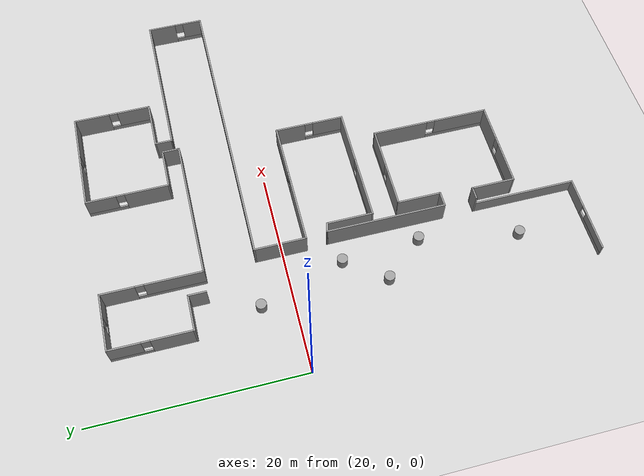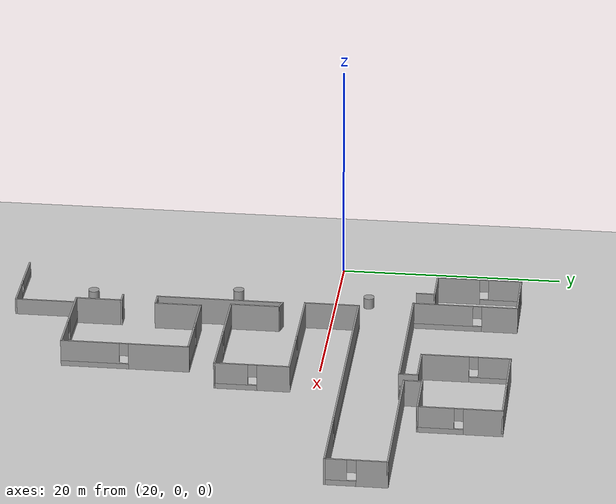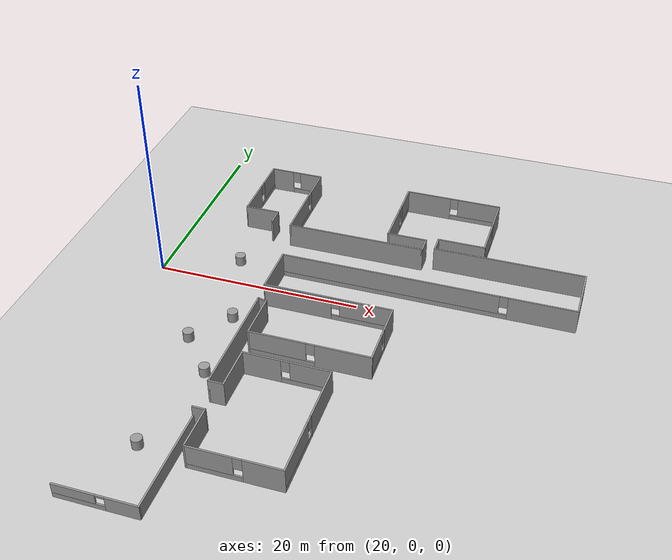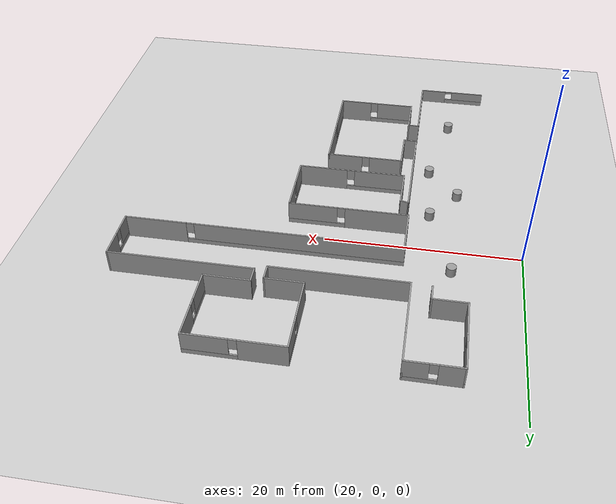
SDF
<sdf version="1.7">
 <world name="default">
  <model name="ground_plane">
   <static>1</static>
   <link name="link">
    <collision name="collision">
     <geometry><plane><normal>0 0 1</normal><size>100 100</size></plane></geometry>
     <surface><friction><ode><mu>100</mu><mu2>50</mu2></ode></friction></surface>
    </collision>
    <visual name="visual">
     <cast_shadows>0</cast_shadows>
     <geometry><plane><normal>0 0 1</normal><size>100 100</size></plane></geometry>
     <material>
      <script><uri>file://media/materials/scripts/gazebo.material</uri><name>Gazebo/Grey</name></script>
     </material>
    </visual>
   </link>
  </model>
  <model name="Hummanoid_Test_world">
   <pose>28.8571 1.76082 0 0 -0 0</pose>
   <link name="Wall_26">
    <collision name="Wall_26_Collision">
     <geometry><box><size>1.75 0.15 2.5</size></box></geometry>
     <pose>0 0 1.25 0 -0 0</pose>
    </collision>
    <visual name="Wall_26_Visual">
     <pose>0 0 1.25 0 -0 0</pose>
     <geometry><box><size>1.75 0.15 2.5</size></box></geometry>
     <material>
      <script><uri>file://media/materials/scripts/gazebo.material</uri><name>Gazebo/Grey</name></script>
      <ambient>1 1 1 1</ambient>
     </material>
     <meta><layer>0</layer></meta>
    </visual>
    <pose>-0.100001 6.615 0 0 -0 1.5708</pose>
   </link>
   <link name="Wall_27">
    <collision name="Wall_27_Collision">
     <geometry><box><size>3.5 0.15 2.5</size></box></geometry>
     <pose>0 0 1.25 0 -0 0</pose>
    </collision>
    <visual name="Wall_27_Visual">
     <pose>0 0 1.25 0 -0 0</pose>
     <geometry><box><size>3.5 0.15 2.5</size></box></geometry>
     <material>
      <script><uri>file://media/materials/scripts/gazebo.material</uri><name>Gazebo/Grey</name></script>
      <ambient>1 1 1 1</ambient>
     </material>
     <meta><layer>0</layer></meta>
    </visual>
    <pose>-1.775 7.415 0 0 -0 3.14159</pose>
   </link>
   <link name="Wall_28">
    <pose>-3.45 11.215 0 0 -0 1.5708</pose>
    <visual name="Wall_28_Visual_0">
     <pose>-1.91382 0 1.25 0 -0 0</pose>
     <geometry><box><size>3.92235 0.15 2.5</size></box></geometry>
     <material>
      <script><uri>file://media/materials/scripts/gazebo.material</uri><name>Gazebo/Grey</name></script>
      <ambient>1 1 1 1</ambient>
     </material>
     <meta><layer>0</layer></meta>
    </visual>
    <collision name="Wall_28_Collision_0">
     <geometry><box><size>3.92235 0.15 2.5</size></box></geometry>
     <pose>-1.91382 0 1.25 0 -0 0</pose>
    </collision>
    <visual name="Wall_28_Visual_1">
     <pose>1.96118 0 0.25 0 -0 0</pose>
     <geometry><box><size>3.82765 0.15 0.5</size></box></geometry>
     <material>
      <script><uri>file://media/materials/scripts/gazebo.material</uri><name>Gazebo/Grey</name></script>
      <ambient>1 1 1 1</ambient>
     </material>
     <meta><layer>0</layer></meta>
    </visual>
    <collision name="Wall_28_Collision_1">
     <geometry><box><size>3.82765 0.15 0.5</size></box></geometry>
     <pose>1.96118 0 0.25 0 -0 0</pose>
    </collision>
    <visual name="Wall_28_Visual_2">
     <pose>2.36118 0 1.5 0 -0 0</pose>
     <geometry><box><size>3.02765 0.15 2</size></box></geometry>
     <material>
      <script><uri>file://media/materials/scripts/gazebo.material</uri><name>Gazebo/Grey</name></script>
      <ambient>1 1 1 1</ambient>
     </material>
     <meta><layer>0</layer></meta>
    </visual>
    <collision name="Wall_28_Collision_2">
     <geometry><box><size>3.02765 0.15 2</size></box></geometry>
     <pose>2.36118 0 1.5 0 -0 0</pose>
    </collision>
    <visual name="Wall_28_Visual_3">
     <pose>0.447352 0 1.9 0 -0 0</pose>
     <geometry><box><size>0.8 0.15 1.2</size></box></geometry>
     <material>
      <script><uri>file://media/materials/scripts/gazebo.material</uri><name>Gazebo/Grey</name></script>
      <ambient>1 1 1 1</ambient>
     </material>
     <meta><layer>0</layer></meta>
    </visual>
    <collision name="Wall_28_Collision_3">
     <geometry><box><size>0.8 0.15 1.2</size></box></geometry>
     <pose>0.447352 0 1.9 0 -0 0</pose>
    </collision>
   </link>
   <link name="Wall_29">
    <pose>-0.775 15.015 0 0 -0 0</pose>
    <visual name="Wall_29_Visual_0">
     <pose>-1.5701 0 1.25 0 -0 0</pose>
     <geometry><box><size>2.35979 0.15 2.5</size></box></geometry>
     <material>
      <script><uri>file://media/materials/scripts/gazebo.material</uri><name>Gazebo/Grey</name></script>
      <ambient>1 1 1 1</ambient>
     </material>
     <meta><layer>0</layer></meta>
    </visual>
    <collision name="Wall_29_Collision_0">
     <geometry><box><size>2.35979 0.15 2.5</size></box></geometry>
     <pose>-1.5701 0 1.25 0 -0 0</pose>
    </collision>
    <visual name="Wall_29_Visual_1">
     <pose>1.1799 0 0.25 0 -0 0</pose>
     <geometry><box><size>3.14021 0.15 0.5</size></box></geometry>
     <material>
      <script><uri>file://media/materials/scripts/gazebo.material</uri><name>Gazebo/Grey</name></script>
      <ambient>1 1 1 1</ambient>
     </material>
     <meta><layer>0</layer></meta>
    </visual>
    <collision name="Wall_29_Collision_1">
     <geometry><box><size>3.14021 0.15 0.5</size></box></geometry>
     <pose>1.1799 0 0.25 0 -0 0</pose>
    </collision>
    <visual name="Wall_29_Visual_2">
     <pose>1.5799 0 1.5 0 -0 0</pose>
     <geometry><box><size>2.34021 0.15 2</size></box></geometry>
     <material>
      <script><uri>file://media/materials/scripts/gazebo.material</uri><name>Gazebo/Grey</name></script>
      <ambient>1 1 1 1</ambient>
     </material>
     <meta><layer>0</layer></meta>
    </visual>
    <collision name="Wall_29_Collision_2">
     <geometry><box><size>2.34021 0.15 2</size></box></geometry>
     <pose>1.5799 0 1.5 0 -0 0</pose>
    </collision>
    <visual name="Wall_29_Visual_3">
     <pose>0.009794 0 1.9 0 -0 0</pose>
     <geometry><box><size>0.8 0.15 1.2</size></box></geometry>
     <material>
      <script><uri>file://media/materials/scripts/gazebo.material</uri><name>Gazebo/Grey</name></script>
      <ambient>1 1 1 1</ambient>
     </material>
     <meta><layer>0</layer></meta>
    </visual>
    <collision name="Wall_29_Collision_3">
     <geometry><box><size>0.8 0.15 1.2</size></box></geometry>
     <pose>0.009794 0 1.9 0 -0 0</pose>
    </collision>
   </link>
   <link name="Wall_30">
    <pose>1.9 10.34 0 0 -0 -1.5708</pose>
    <visual name="Wall_30_Visual_0">
     <pose>-3.12917 0 1.25 0 -0 0</pose>
     <geometry><box><size>3.24166 0.15 2.5</size></box></geometry>
     <material>
      <script><uri>file://media/materials/scripts/gazebo.material</uri><name>Gazebo/Grey</name></script>
      <ambient>1 1 1 1</ambient>
     </material>
     <meta><layer>0</layer></meta>
    </visual>
    <collision name="Wall_30_Collision_0">
     <geometry><box><size>3.24166 0.15 2.5</size></box></geometry>
     <pose>-3.12917 0 1.25 0 -0 0</pose>
    </collision>
    <visual name="Wall_30_Visual_1">
     <pose>1.62083 0 0.25 0 -0 0</pose>
     <geometry><box><size>6.25834 0.15 0.5</size></box></geometry>
     <material>
      <script><uri>file://media/materials/scripts/gazebo.material</uri><name>Gazebo/Grey</name></script>
      <ambient>1 1 1 1</ambient>
     </material>
     <meta><layer>0</layer></meta>
    </visual>
    <collision name="Wall_30_Collision_1">
     <geometry><box><size>6.25834 0.15 0.5</size></box></geometry>
     <pose>1.62083 0 0.25 0 -0 0</pose>
    </collision>
    <visual name="Wall_30_Visual_2">
     <pose>2.02083 0 1.5 0 -0 0</pose>
     <geometry><box><size>5.45834 0.15 2</size></box></geometry>
     <material>
      <script><uri>file://media/materials/scripts/gazebo.material</uri><name>Gazebo/Grey</name></script>
      <ambient>1 1 1 1</ambient>
     </material>
     <meta><layer>0</layer></meta>
    </visual>
    <collision name="Wall_30_Collision_2">
     <geometry><box><size>5.45834 0.15 2</size></box></geometry>
     <pose>2.02083 0 1.5 0 -0 0</pose>
    </collision>
    <visual name="Wall_30_Visual_3">
     <pose>-1.10834 0 1.9 0 -0 0</pose>
     <geometry><box><size>0.8 0.15 1.2</size></box></geometry>
     <material>
      <script><uri>file://media/materials/scripts/gazebo.material</uri><name>Gazebo/Grey</name></script>
      <ambient>1 1 1 1</ambient>
     </material>
     <meta><layer>0</layer></meta>
    </visual>
    <collision name="Wall_30_Collision_3">
     <geometry><box><size>0.8 0.15 1.2</size></box></geometry>
     <pose>-1.10834 0 1.9 0 -0 0</pose>
    </collision>
   </link>
   <link name="Wall_31">
    <collision name="Wall_31_Collision">
     <geometry><box><size>13.75 0.15 2.5</size></box></geometry>
     <pose>0 0 1.25 0 -0 0</pose>
    </collision>
    <visual name="Wall_31_Visual">
     <pose>0 0 1.25 0 -0 0</pose>
     <geometry><box><size>13.75 0.15 2.5</size></box></geometry>
     <material>
      <script><uri>file://media/materials/scripts/gazebo.material</uri><name>Gazebo/Grey</name></script>
      <ambient>1 1 1 1</ambient>
     </material>
     <meta><layer>0</layer></meta>
    </visual>
    <pose>8.7 5.665 0 0 -0 0</pose>
   </link>
   <link name="Wall_32">
    <collision name="Wall_32_Collision">
     <geometry><box><size>1.75 0.15 2.5</size></box></geometry>
     <pose>0 0 1.25 0 -0 0</pose>
    </collision>
    <visual name="Wall_32_Visual">
     <pose>0 0 1.25 0 -0 0</pose>
     <geometry><box><size>1.75 0.15 2.5</size></box></geometry>
     <material>
      <script><uri>file://media/materials/scripts/gazebo.material</uri><name>Gazebo/Grey</name></script>
      <ambient>1 1 1 1</ambient>
     </material>
     <meta><layer>0</layer></meta>
    </visual>
    <pose>15.5 6.465 0 0 -0 1.5708</pose>
   </link>
   <link name="Wall_33">
    <collision name="Wall_33_Collision">
     <geometry><box><size>4 0.15 2.5</size></box></geometry>
     <pose>0 0 1.25 0 -0 0</pose>
    </collision>
    <visual name="Wall_33_Visual">
     <pose>0 0 1.25 0 -0 0</pose>
     <geometry><box><size>4 0.15 2.5</size></box></geometry>
     <material>
      <script><uri>file://media/materials/scripts/gazebo.material</uri><name>Gazebo/Grey</name></script>
      <ambient>1 1 1 1</ambient>
     </material>
     <meta><layer>0</layer></meta>
    </visual>
    <pose>13.575 7.265 0 0 -0 3.14159</pose>
   </link>
   <link name="Wall_34">
    <pose>11.65 11.19 0 0 -0 1.5708</pose>
    <visual name="Wall_34_Visual_0">
     <pose>-1.85682 0 1.25 0 -0 0</pose>
     <geometry><box><size>4.28636 0.15 2.5</size></box></geometry>
     <material>
      <script><uri>file://media/materials/scripts/gazebo.material</uri><name>Gazebo/Grey</name></script>
      <ambient>1 1 1 1</ambient>
     </material>
     <meta><layer>0</layer></meta>
    </visual>
    <collision name="Wall_34_Collision_0">
     <geometry><box><size>4.28636 0.15 2.5</size></box></geometry>
     <pose>-1.85682 0 1.25 0 -0 0</pose>
    </collision>
    <visual name="Wall_34_Visual_1">
     <pose>2.14318 0 0.25 0 -0 0</pose>
     <geometry><box><size>3.71364 0.15 0.5</size></box></geometry>
     <material>
      <script><uri>file://media/materials/scripts/gazebo.material</uri><name>Gazebo/Grey</name></script>
      <ambient>1 1 1 1</ambient>
     </material>
     <meta><layer>0</layer></meta>
    </visual>
    <collision name="Wall_34_Collision_1">
     <geometry><box><size>3.71364 0.15 0.5</size></box></geometry>
     <pose>2.14318 0 0.25 0 -0 0</pose>
    </collision>
    <visual name="Wall_34_Visual_2">
     <pose>2.54318 0 1.5 0 -0 0</pose>
     <geometry><box><size>2.91364 0.15 2</size></box></geometry>
     <material>
      <script><uri>file://media/materials/scripts/gazebo.material</uri><name>Gazebo/Grey</name></script>
      <ambient>1 1 1 1</ambient>
     </material>
     <meta><layer>0</layer></meta>
    </visual>
    <collision name="Wall_34_Collision_2">
     <geometry><box><size>2.91364 0.15 2</size></box></geometry>
     <pose>2.54318 0 1.5 0 -0 0</pose>
    </collision>
    <visual name="Wall_34_Visual_3">
     <pose>0.686362 0 1.9 0 -0 0</pose>
     <geometry><box><size>0.8 0.15 1.2</size></box></geometry>
     <material>
      <script><uri>file://media/materials/scripts/gazebo.material</uri><name>Gazebo/Grey</name></script>
      <ambient>1 1 1 1</ambient>
     </material>
     <meta><layer>0</layer></meta>
    </visual>
    <collision name="Wall_34_Collision_3">
     <geometry><box><size>0.8 0.15 1.2</size></box></geometry>
     <pose>0.686362 0 1.9 0 -0 0</pose>
    </collision>
   </link>
   <link name="Wall_35">
    <pose>16.45 15.115 0 0 -0 0</pose>
    <visual name="Wall_35_Visual_0">
     <pose>-2.5777 0 1.25 0 -0 0</pose>
     <geometry><box><size>4.59461 0.15 2.5</size></box></geometry>
     <material>
      <script><uri>file://media/materials/scripts/gazebo.material</uri><name>Gazebo/Grey</name></script>
      <ambient>1 1 1 1</ambient>
     </material>
     <meta><layer>0</layer></meta>
    </visual>
    <collision name="Wall_35_Collision_0">
     <geometry><box><size>4.59461 0.15 2.5</size></box></geometry>
     <pose>-2.5777 0 1.25 0 -0 0</pose>
    </collision>
    <visual name="Wall_35_Visual_1">
     <pose>2.2973 0 0.25 0 -0 0</pose>
     <geometry><box><size>5.15539 0.15 0.5</size></box></geometry>
     <material>
      <script><uri>file://media/materials/scripts/gazebo.material</uri><name>Gazebo/Grey</name></script>
      <ambient>1 1 1 1</ambient>
     </material>
     <meta><layer>0</layer></meta>
    </visual>
    <collision name="Wall_35_Collision_1">
     <geometry><box><size>5.15539 0.15 0.5</size></box></geometry>
     <pose>2.2973 0 0.25 0 -0 0</pose>
    </collision>
    <visual name="Wall_35_Visual_2">
     <pose>2.6973 0 1.5 0 -0 0</pose>
     <geometry><box><size>4.35539 0.15 2</size></box></geometry>
     <material>
      <script><uri>file://media/materials/scripts/gazebo.material</uri><name>Gazebo/Grey</name></script>
      <ambient>1 1 1 1</ambient>
     </material>
     <meta><layer>0</layer></meta>
    </visual>
    <collision name="Wall_35_Collision_2">
     <geometry><box><size>4.35539 0.15 2</size></box></geometry>
     <pose>2.6973 0 1.5 0 -0 0</pose>
    </collision>
    <visual name="Wall_35_Visual_3">
     <pose>0.119606 0 1.9 0 -0 0</pose>
     <geometry><box><size>0.8 0.15 1.2</size></box></geometry>
     <material>
      <script><uri>file://media/materials/scripts/gazebo.material</uri><name>Gazebo/Grey</name></script>
      <ambient>1 1 1 1</ambient>
     </material>
     <meta><layer>0</layer></meta>
    </visual>
    <collision name="Wall_35_Collision_3">
     <geometry><box><size>0.8 0.15 1.2</size></box></geometry>
     <pose>0.119606 0 1.9 0 -0 0</pose>
    </collision>
   </link>
   <link name="Wall_36">
    <pose>21.25 11.44 0 0 -0 -1.5708</pose>
    <visual name="Wall_36_Visual_0">
     <pose>-2.02567 0 1.25 0 -0 0</pose>
     <geometry><box><size>3.44866 0.15 2.5</size></box></geometry>
     <material>
      <script><uri>file://media/materials/scripts/gazebo.material</uri><name>Gazebo/Grey</name></script>
      <ambient>1 1 1 1</ambient>
     </material>
     <meta><layer>0</layer></meta>
    </visual>
    <collision name="Wall_36_Collision_0">
     <geometry><box><size>3.44866 0.15 2.5</size></box></geometry>
     <pose>-2.02567 0 1.25 0 -0 0</pose>
    </collision>
    <visual name="Wall_36_Visual_1">
     <pose>1.72433 0 0.25 0 -0 0</pose>
     <geometry><box><size>4.05134 0.15 0.5</size></box></geometry>
     <material>
      <script><uri>file://media/materials/scripts/gazebo.material</uri><name>Gazebo/Grey</name></script>
      <ambient>1 1 1 1</ambient>
     </material>
     <meta><layer>0</layer></meta>
    </visual>
    <collision name="Wall_36_Collision_1">
     <geometry><box><size>4.05134 0.15 0.5</size></box></geometry>
     <pose>1.72433 0 0.25 0 -0 0</pose>
    </collision>
    <visual name="Wall_36_Visual_2">
     <pose>2.12433 0 1.5 0 -0 0</pose>
     <geometry><box><size>3.25134 0.15 2</size></box></geometry>
     <material>
      <script><uri>file://media/materials/scripts/gazebo.material</uri><name>Gazebo/Grey</name></script>
      <ambient>1 1 1 1</ambient>
     </material>
     <meta><layer>0</layer></meta>
    </visual>
    <collision name="Wall_36_Collision_2">
     <geometry><box><size>3.25134 0.15 2</size></box></geometry>
     <pose>2.12433 0 1.5 0 -0 0</pose>
    </collision>
    <visual name="Wall_36_Visual_3">
     <pose>0.098663 0 1.9 0 -0 0</pose>
     <geometry><box><size>0.8 0.15 1.2</size></box></geometry>
     <material>
      <script><uri>file://media/materials/scripts/gazebo.material</uri><name>Gazebo/Grey</name></script>
      <ambient>1 1 1 1</ambient>
     </material>
     <meta><layer>0</layer></meta>
    </visual>
    <collision name="Wall_36_Collision_3">
     <geometry><box><size>0.8 0.15 1.2</size></box></geometry>
     <pose>0.098663 0 1.9 0 -0 0</pose>
    </collision>
   </link>
   <link name="Wall_37">
    <collision name="Wall_37_Collision">
     <geometry><box><size>4.75 0.15 2.5</size></box></geometry>
     <pose>0 0 1.25 0 -0 0</pose>
    </collision>
    <visual name="Wall_37_Visual">
     <pose>0 0 1.25 0 -0 0</pose>
     <geometry><box><size>4.75 0.15 2.5</size></box></geometry>
     <material>
      <script><uri>file://media/materials/scripts/gazebo.material</uri><name>Gazebo/Grey</name></script>
      <ambient>1 1 1 1</ambient>
     </material>
     <meta><layer>0</layer></meta>
    </visual>
    <pose>18.95 7.765 0 0 -0 3.14159</pose>
   </link>
   <link name="Wall_38">
    <collision name="Wall_38_Collision">
     <geometry><box><size>1.75 0.15 2.5</size></box></geometry>
     <pose>0 0 1.25 0 -0 0</pose>
    </collision>
    <visual name="Wall_38_Visual">
     <pose>0 0 1.25 0 -0 0</pose>
     <geometry><box><size>1.75 0.15 2.5</size></box></geometry>
     <material>
      <script><uri>file://media/materials/scripts/gazebo.material</uri><name>Gazebo/Grey</name></script>
      <ambient>1 1 1 1</ambient>
     </material>
     <meta><layer>0</layer></meta>
    </visual>
    <pose>16.65 6.965 0 0 -0 -1.5708</pose>
   </link>
   <link name="Wall_39">
    <collision name="Wall_39_Collision">
     <geometry><box><size>14.75 0.15 2.5</size></box></geometry>
     <pose>0 0 1.25 0 -0 0</pose>
    </collision>
    <visual name="Wall_39_Visual">
     <pose>0 0 1.25 0 -0 0</pose>
     <geometry><box><size>14.75 0.15 2.5</size></box></geometry>
     <material>
      <script><uri>file://media/materials/scripts/gazebo.material</uri><name>Gazebo/Grey</name></script>
      <ambient>1 1 1 1</ambient>
     </material>
     <meta><layer>0</layer></meta>
    </visual>
    <pose>23.95 6.165 0 0 -0 0</pose>
   </link>
   <link name="Wall_40">
    <pose>31.25 3.49 0 0 -0 -1.5708</pose>
    <visual name="Wall_40_Visual_0">
     <pose>-1.38098 0 1.25 0 -0 0</pose>
     <geometry><box><size>2.73805 0.15 2.5</size></box></geometry>
     <material>
      <script><uri>file://media/materials/scripts/gazebo.material</uri><name>Gazebo/Grey</name></script>
      <ambient>1 1 1 1</ambient>
     </material>
     <meta><layer>0</layer></meta>
    </visual>
    <collision name="Wall_40_Collision_0">
     <geometry><box><size>2.73805 0.15 2.5</size></box></geometry>
     <pose>-1.38098 0 1.25 0 -0 0</pose>
    </collision>
    <visual name="Wall_40_Visual_1">
     <pose>1.36902 0 0.25 0 -0 0</pose>
     <geometry><box><size>2.76195 0.15 0.5</size></box></geometry>
     <material>
      <script><uri>file://media/materials/scripts/gazebo.material</uri><name>Gazebo/Grey</name></script>
      <ambient>1 1 1 1</ambient>
     </material>
     <meta><layer>0</layer></meta>
    </visual>
    <collision name="Wall_40_Collision_1">
     <geometry><box><size>2.76195 0.15 0.5</size></box></geometry>
     <pose>1.36902 0 0.25 0 -0 0</pose>
    </collision>
    <visual name="Wall_40_Visual_2">
     <pose>1.76902 0 1.5 0 -0 0</pose>
     <geometry><box><size>1.96195 0.15 2</size></box></geometry>
     <material>
      <script><uri>file://media/materials/scripts/gazebo.material</uri><name>Gazebo/Grey</name></script>
      <ambient>1 1 1 1</ambient>
     </material>
     <meta><layer>0</layer></meta>
    </visual>
    <collision name="Wall_40_Collision_2">
     <geometry><box><size>1.96195 0.15 2</size></box></geometry>
     <pose>1.76902 0 1.5 0 -0 0</pose>
    </collision>
    <visual name="Wall_40_Visual_3">
     <pose>0.388048 0 1.9 0 -0 0</pose>
     <geometry><box><size>0.8 0.15 1.2</size></box></geometry>
     <material>
      <script><uri>file://media/materials/scripts/gazebo.material</uri><name>Gazebo/Grey</name></script>
      <ambient>1 1 1 1</ambient>
     </material>
     <meta><layer>0</layer></meta>
    </visual>
    <collision name="Wall_40_Collision_3">
     <geometry><box><size>0.8 0.15 1.2</size></box></geometry>
     <pose>0.388048 0 1.9 0 -0 0</pose>
    </collision>
   </link>
   <link name="Wall_41">
    <pose>17.075 0.815001 0 0 -0 3.14159</pose>
    <visual name="Wall_41_Visual_0">
     <pose>-11.0315 0 1.25 0 -0 0</pose>
     <geometry><box><size>6.43703 0.15 2.5</size></box></geometry>
     <material>
      <script><uri>file://media/materials/scripts/gazebo.material</uri><name>Gazebo/Grey</name></script>
      <ambient>1 1 1 1</ambient>
     </material>
     <meta><layer>0</layer></meta>
    </visual>
    <collision name="Wall_41_Collision_0">
     <geometry><box><size>6.43703 0.15 2.5</size></box></geometry>
     <pose>-11.0315 0 1.25 0 -0 0</pose>
    </collision>
    <visual name="Wall_41_Visual_1">
     <pose>3.21851 0 0.25 0 -0 0</pose>
     <geometry><box><size>22.063 0.15 0.5</size></box></geometry>
     <material>
      <script><uri>file://media/materials/scripts/gazebo.material</uri><name>Gazebo/Grey</name></script>
      <ambient>1 1 1 1</ambient>
     </material>
     <meta><layer>0</layer></meta>
    </visual>
    <collision name="Wall_41_Collision_1">
     <geometry><box><size>22.063 0.15 0.5</size></box></geometry>
     <pose>3.21851 0 0.25 0 -0 0</pose>
    </collision>
    <visual name="Wall_41_Visual_2">
     <pose>3.61851 0 1.5 0 -0 0</pose>
     <geometry><box><size>21.263 0.15 2</size></box></geometry>
     <material>
      <script><uri>file://media/materials/scripts/gazebo.material</uri><name>Gazebo/Grey</name></script>
      <ambient>1 1 1 1</ambient>
     </material>
     <meta><layer>0</layer></meta>
    </visual>
    <collision name="Wall_41_Collision_2">
     <geometry><box><size>21.263 0.15 2</size></box></geometry>
     <pose>3.61851 0 1.5 0 -0 0</pose>
    </collision>
    <visual name="Wall_41_Visual_3">
     <pose>-7.41298 0 1.9 0 -0 0</pose>
     <geometry><box><size>0.8 0.15 1.2</size></box></geometry>
     <material>
      <script><uri>file://media/materials/scripts/gazebo.material</uri><name>Gazebo/Grey</name></script>
      <ambient>1 1 1 1</ambient>
     </material>
     <meta><layer>0</layer></meta>
    </visual>
    <collision name="Wall_41_Collision_3">
     <geometry><box><size>0.8 0.15 1.2</size></box></geometry>
     <pose>-7.41298 0 1.9 0 -0 0</pose>
    </collision>
   </link>
   <link name="Wall_42">
    <collision name="Wall_42_Collision">
     <geometry><box><size>5 0.15 2.5</size></box></geometry>
     <pose>0 0 1.25 0 -0 0</pose>
    </collision>
    <visual name="Wall_42_Visual">
     <pose>0 0 1.25 0 -0 0</pose>
     <geometry><box><size>5 0.15 2.5</size></box></geometry>
     <material>
      <script><uri>file://media/materials/scripts/gazebo.material</uri><name>Gazebo/Grey</name></script>
      <ambient>1 1 1 1</ambient>
     </material>
     <meta><layer>0</layer></meta>
    </visual>
    <pose>2.9 -1.61 0 0 -0 -1.5708</pose>
   </link>
   <link name="Wall_43">
    <pose>9.075 -4.035 0 0 -0 0</pose>
    <visual name="Wall_43_Visual_0">
     <pose>-2.95559 0 1.25 0 -0 0</pose>
     <geometry><box><size>6.58883 0.15 2.5</size></box></geometry>
     <material>
      <script><uri>file://media/materials/scripts/gazebo.material</uri><name>Gazebo/Grey</name></script>
      <ambient>1 1 1 1</ambient>
     </material>
     <meta><layer>0</layer></meta>
    </visual>
    <collision name="Wall_43_Collision_0">
     <geometry><box><size>6.58883 0.15 2.5</size></box></geometry>
     <pose>-2.95559 0 1.25 0 -0 0</pose>
    </collision>
    <visual name="Wall_43_Visual_1">
     <pose>3.29441 0 0.25 0 -0 0</pose>
     <geometry><box><size>5.91117 0.15 0.5</size></box></geometry>
     <material>
      <script><uri>file://media/materials/scripts/gazebo.material</uri><name>Gazebo/Grey</name></script>
      <ambient>1 1 1 1</ambient>
     </material>
     <meta><layer>0</layer></meta>
    </visual>
    <collision name="Wall_43_Collision_1">
     <geometry><box><size>5.91117 0.15 0.5</size></box></geometry>
     <pose>3.29441 0 0.25 0 -0 0</pose>
    </collision>
    <visual name="Wall_43_Visual_2">
     <pose>3.69441 0 1.5 0 -0 0</pose>
     <geometry><box><size>5.11117 0.15 2</size></box></geometry>
     <material>
      <script><uri>file://media/materials/scripts/gazebo.material</uri><name>Gazebo/Grey</name></script>
      <ambient>1 1 1 1</ambient>
     </material>
     <meta><layer>0</layer></meta>
    </visual>
    <collision name="Wall_43_Collision_2">
     <geometry><box><size>5.11117 0.15 2</size></box></geometry>
     <pose>3.69441 0 1.5 0 -0 0</pose>
    </collision>
    <visual name="Wall_43_Visual_3">
     <pose>0.738827 0 1.9 0 -0 0</pose>
     <geometry><box><size>0.8 0.15 1.2</size></box></geometry>
     <material>
      <script><uri>file://media/materials/scripts/gazebo.material</uri><name>Gazebo/Grey</name></script>
      <ambient>1 1 1 1</ambient>
     </material>
     <meta><layer>0</layer></meta>
    </visual>
    <collision name="Wall_43_Collision_3">
     <geometry><box><size>0.8 0.15 1.2</size></box></geometry>
     <pose>0.738827 0 1.9 0 -0 0</pose>
    </collision>
   </link>
   <link name="Wall_44">
    <pose>15.25 -7.335 0 0 -0 -1.5708</pose>
    <visual name="Wall_44_Visual_0">
     <pose>-1.91623 0 1.25 0 -0 0</pose>
     <geometry><box><size>2.91753 0.15 2.5</size></box></geometry>
     <material>
      <script><uri>file://media/materials/scripts/gazebo.material</uri><name>Gazebo/Grey</name></script>
      <ambient>1 1 1 1</ambient>
     </material>
     <meta><layer>0</layer></meta>
    </visual>
    <collision name="Wall_44_Collision_0">
     <geometry><box><size>2.91753 0.15 2.5</size></box></geometry>
     <pose>-1.91623 0 1.25 0 -0 0</pose>
    </collision>
    <visual name="Wall_44_Visual_1">
     <pose>1.45877 0 0.25 0 -0 0</pose>
     <geometry><box><size>3.83247 0.15 0.5</size></box></geometry>
     <material>
      <script><uri>file://media/materials/scripts/gazebo.material</uri><name>Gazebo/Grey</name></script>
      <ambient>1 1 1 1</ambient>
     </material>
     <meta><layer>0</layer></meta>
    </visual>
    <collision name="Wall_44_Collision_1">
     <geometry><box><size>3.83247 0.15 0.5</size></box></geometry>
     <pose>1.45877 0 0.25 0 -0 0</pose>
    </collision>
    <visual name="Wall_44_Visual_2">
     <pose>1.85877 0 1.5 0 -0 0</pose>
     <geometry><box><size>3.03247 0.15 2</size></box></geometry>
     <material>
      <script><uri>file://media/materials/scripts/gazebo.material</uri><name>Gazebo/Grey</name></script>
      <ambient>1 1 1 1</ambient>
     </material>
     <meta><layer>0</layer></meta>
    </visual>
    <collision name="Wall_44_Collision_2">
     <geometry><box><size>3.03247 0.15 2</size></box></geometry>
     <pose>1.85877 0 1.5 0 -0 0</pose>
    </collision>
    <visual name="Wall_44_Visual_3">
     <pose>-0.057467 0 1.9 0 -0 0</pose>
     <geometry><box><size>0.8 0.15 1.2</size></box></geometry>
     <material>
      <script><uri>file://media/materials/scripts/gazebo.material</uri><name>Gazebo/Grey</name></script>
      <ambient>1 1 1 1</ambient>
     </material>
     <meta><layer>0</layer></meta>
    </visual>
    <collision name="Wall_44_Collision_3">
     <geometry><box><size>0.8 0.15 1.2</size></box></geometry>
     <pose>-0.057467 0 1.9 0 -0 0</pose>
    </collision>
   </link>
   <link name="Wall_45">
    <pose>9.575 -10.635 0 0 -0 3.14159</pose>
    <visual name="Wall_45_Visual_0">
     <pose>-3.12485 0 1.25 0 -0 0</pose>
     <geometry><box><size>5.2503 0.15 2.5</size></box></geometry>
     <material>
      <script><uri>file://media/materials/scripts/gazebo.material</uri><name>Gazebo/Grey</name></script>
      <ambient>1 1 1 1</ambient>
     </material>
     <meta><layer>0</layer></meta>
    </visual>
    <collision name="Wall_45_Collision_0">
     <geometry><box><size>5.2503 0.15 2.5</size></box></geometry>
     <pose>-3.12485 0 1.25 0 -0 0</pose>
    </collision>
    <visual name="Wall_45_Visual_1">
     <pose>2.62515 0 0.25 0 -0 0</pose>
     <geometry><box><size>6.2497 0.15 0.5</size></box></geometry>
     <material>
      <script><uri>file://media/materials/scripts/gazebo.material</uri><name>Gazebo/Grey</name></script>
      <ambient>1 1 1 1</ambient>
     </material>
     <meta><layer>0</layer></meta>
    </visual>
    <collision name="Wall_45_Collision_1">
     <geometry><box><size>6.2497 0.15 0.5</size></box></geometry>
     <pose>2.62515 0 0.25 0 -0 0</pose>
    </collision>
    <visual name="Wall_45_Visual_2">
     <pose>3.02515 0 1.5 0 -0 0</pose>
     <geometry><box><size>5.4497 0.15 2</size></box></geometry>
     <material>
      <script><uri>file://media/materials/scripts/gazebo.material</uri><name>Gazebo/Grey</name></script>
      <ambient>1 1 1 1</ambient>
     </material>
     <meta><layer>0</layer></meta>
    </visual>
    <collision name="Wall_45_Collision_2">
     <geometry><box><size>5.4497 0.15 2</size></box></geometry>
     <pose>3.02515 0 1.5 0 -0 0</pose>
    </collision>
    <visual name="Wall_45_Visual_3">
     <pose>-0.099697 0 1.9 0 -0 0</pose>
     <geometry><box><size>0.8 0.15 1.2</size></box></geometry>
     <material>
      <script><uri>file://media/materials/scripts/gazebo.material</uri><name>Gazebo/Grey</name></script>
      <ambient>1 1 1 1</ambient>
     </material>
     <meta><layer>0</layer></meta>
    </visual>
    <collision name="Wall_45_Collision_3">
     <geometry><box><size>0.8 0.15 1.2</size></box></geometry>
     <pose>-0.099697 0 1.9 0 -0 0</pose>
    </collision>
   </link>
   <link name="Wall_46">
    <collision name="Wall_46_Collision">
     <geometry><box><size>4.5 0.15 2.5</size></box></geometry>
     <pose>0 0 1.25 0 -0 0</pose>
    </collision>
    <visual name="Wall_46_Visual">
     <pose>0 0 1.25 0 -0 0</pose>
     <geometry><box><size>4.5 0.15 2.5</size></box></geometry>
     <material>
      <script><uri>file://media/materials/scripts/gazebo.material</uri><name>Gazebo/Grey</name></script>
      <ambient>1 1 1 1</ambient>
     </material>
     <meta><layer>0</layer></meta>
    </visual>
    <pose>3.9 -8.46 0 0 -0 1.5708</pose>
   </link>
   <link name="Wall_47">
    <collision name="Wall_47_Collision">
     <geometry><box><size>1 0.15 2.5</size></box></geometry>
     <pose>0 0 1.25 0 -0 0</pose>
    </collision>
    <visual name="Wall_47_Visual">
     <pose>0 0 1.25 0 -0 0</pose>
     <geometry><box><size>1 0.15 2.5</size></box></geometry>
     <material>
      <script><uri>file://media/materials/scripts/gazebo.material</uri><name>Gazebo/Grey</name></script>
      <ambient>1 1 1 1</ambient>
     </material>
     <meta><layer>0</layer></meta>
    </visual>
    <pose>3.48948 -6.175 0 0 -0 2.87979</pose>
   </link>
   <link name="Wall_48">
    <collision name="Wall_48_Collision">
     <geometry><box><size>11.5 0.15 2.5</size></box></geometry>
     <pose>0 0 1.25 0 -0 0</pose>
    </collision>
    <visual name="Wall_48_Visual">
     <pose>0 0 1.25 0 -0 0</pose>
     <geometry><box><size>11.5 0.15 2.5</size></box></geometry>
     <material>
      <script><uri>file://media/materials/scripts/gazebo.material</uri><name>Gazebo/Grey</name></script>
      <ambient>1 1 1 1</ambient>
     </material>
     <meta><layer>0</layer></meta>
    </visual>
    <pose>3.07896 -11.74 0 0 -0 -1.5708</pose>
   </link>
   <link name="Wall_49">
    <collision name="Wall_49_Collision">
     <geometry><box><size>1.5 0.15 2.5</size></box></geometry>
     <pose>0 0 1.25 0 -0 0</pose>
    </collision>
    <visual name="Wall_49_Visual">
     <pose>0 0 1.25 0 -0 0</pose>
     <geometry><box><size>1.5 0.15 2.5</size></box></geometry>
     <material>
      <script><uri>file://media/materials/scripts/gazebo.material</uri><name>Gazebo/Grey</name></script>
      <ambient>1 1 1 1</ambient>
     </material>
     <meta><layer>0</layer></meta>
    </visual>
    <pose>3.75396 -17.415 0 0 -0 0</pose>
   </link>
   <link name="Wall_50">
    <collision name="Wall_50_Collision">
     <geometry><box><size>4.25 0.15 2.5</size></box></geometry>
     <pose>0 0 1.25 0 -0 0</pose>
    </collision>
    <visual name="Wall_50_Visual">
     <pose>0 0 1.25 0 -0 0</pose>
     <geometry><box><size>4.25 0.15 2.5</size></box></geometry>
     <material>
      <script><uri>file://media/materials/scripts/gazebo.material</uri><name>Gazebo/Grey</name></script>
      <ambient>1 1 1 1</ambient>
     </material>
     <meta><layer>0</layer></meta>
    </visual>
    <pose>4.42896 -15.365 0 0 -0 1.5708</pose>
   </link>
   <link name="Wall_51">
    <pose>8.47896 -13.315 0 0 -0 0</pose>
    <visual name="Wall_51_Visual_0">
     <pose>-2.31597 0 1.25 0 -0 0</pose>
     <geometry><box><size>3.61807 0.15 2.5</size></box></geometry>
     <material>
      <script><uri>file://media/materials/scripts/gazebo.material</uri><name>Gazebo/Grey</name></script>
      <ambient>1 1 1 1</ambient>
     </material>
     <meta><layer>0</layer></meta>
    </visual>
    <collision name="Wall_51_Collision_0">
     <geometry><box><size>3.61807 0.15 2.5</size></box></geometry>
     <pose>-2.31597 0 1.25 0 -0 0</pose>
    </collision>
    <visual name="Wall_51_Visual_1">
     <pose>1.80903 0 0.25 0 -0 0</pose>
     <geometry><box><size>4.63193 0.15 0.5</size></box></geometry>
     <material>
      <script><uri>file://media/materials/scripts/gazebo.material</uri><name>Gazebo/Grey</name></script>
      <ambient>1 1 1 1</ambient>
     </material>
     <meta><layer>0</layer></meta>
    </visual>
    <collision name="Wall_51_Collision_1">
     <geometry><box><size>4.63193 0.15 0.5</size></box></geometry>
     <pose>1.80903 0 0.25 0 -0 0</pose>
    </collision>
    <visual name="Wall_51_Visual_2">
     <pose>2.20903 0 1.5 0 -0 0</pose>
     <geometry><box><size>3.83193 0.15 2</size></box></geometry>
     <material>
      <script><uri>file://media/materials/scripts/gazebo.material</uri><name>Gazebo/Grey</name></script>
      <ambient>1 1 1 1</ambient>
     </material>
     <meta><layer>0</layer></meta>
    </visual>
    <collision name="Wall_51_Collision_2">
     <geometry><box><size>3.83193 0.15 2</size></box></geometry>
     <pose>2.20903 0 1.5 0 -0 0</pose>
    </collision>
    <visual name="Wall_51_Visual_3">
     <pose>-0.106934 0 1.9 0 -0 0</pose>
     <geometry><box><size>0.8 0.15 1.2</size></box></geometry>
     <material>
      <script><uri>file://media/materials/scripts/gazebo.material</uri><name>Gazebo/Grey</name></script>
      <ambient>1 1 1 1</ambient>
     </material>
     <meta><layer>0</layer></meta>
    </visual>
    <collision name="Wall_51_Collision_3">
     <geometry><box><size>0.8 0.15 1.2</size></box></geometry>
     <pose>-0.106934 0 1.9 0 -0 0</pose>
    </collision>
   </link>
   <link name="Wall_52">
    <pose>12.529 -18.99 0 0 -0 -1.5708</pose>
    <visual name="Wall_52_Visual_0">
     <pose>-3.02906 0 1.25 0 -0 0</pose>
     <geometry><box><size>5.44188 0.15 2.5</size></box></geometry>
     <material>
      <script><uri>file://media/materials/scripts/gazebo.material</uri><name>Gazebo/Grey</name></script>
      <ambient>1 1 1 1</ambient>
     </material>
     <meta><layer>0</layer></meta>
    </visual>
    <collision name="Wall_52_Collision_0">
     <geometry><box><size>5.44188 0.15 2.5</size></box></geometry>
     <pose>-3.02906 0 1.25 0 -0 0</pose>
    </collision>
    <visual name="Wall_52_Visual_1">
     <pose>2.72094 0 0.25 0 -0 0</pose>
     <geometry><box><size>6.05812 0.15 0.5</size></box></geometry>
     <material>
      <script><uri>file://media/materials/scripts/gazebo.material</uri><name>Gazebo/Grey</name></script>
      <ambient>1 1 1 1</ambient>
     </material>
     <meta><layer>0</layer></meta>
    </visual>
    <collision name="Wall_52_Collision_1">
     <geometry><box><size>6.05812 0.15 0.5</size></box></geometry>
     <pose>2.72094 0 0.25 0 -0 0</pose>
    </collision>
    <visual name="Wall_52_Visual_2">
     <pose>3.12094 0 1.5 0 -0 0</pose>
     <geometry><box><size>5.25812 0.15 2</size></box></geometry>
     <material>
      <script><uri>file://media/materials/scripts/gazebo.material</uri><name>Gazebo/Grey</name></script>
      <ambient>1 1 1 1</ambient>
     </material>
     <meta><layer>0</layer></meta>
    </visual>
    <collision name="Wall_52_Collision_2">
     <geometry><box><size>5.25812 0.15 2</size></box></geometry>
     <pose>3.12094 0 1.5 0 -0 0</pose>
    </collision>
    <visual name="Wall_52_Visual_3">
     <pose>0.091881 0 1.9 0 -0 0</pose>
     <geometry><box><size>0.8 0.15 1.2</size></box></geometry>
     <material>
      <script><uri>file://media/materials/scripts/gazebo.material</uri><name>Gazebo/Grey</name></script>
      <ambient>1 1 1 1</ambient>
     </material>
     <meta><layer>0</layer></meta>
    </visual>
    <collision name="Wall_52_Collision_3">
     <geometry><box><size>0.8 0.15 1.2</size></box></geometry>
     <pose>0.091881 0 1.9 0 -0 0</pose>
    </collision>
   </link>
   <link name="Wall_53">
    <pose>8.35396 -24.665 0 0 -0 3.14159</pose>
    <visual name="Wall_53_Visual_0">
     <pose>-2.47361 0 1.25 0 -0 0</pose>
     <geometry><box><size>3.55279 0.15 2.5</size></box></geometry>
     <material>
      <script><uri>file://media/materials/scripts/gazebo.material</uri><name>Gazebo/Grey</name></script>
      <ambient>1 1 1 1</ambient>
     </material>
     <meta><layer>0</layer></meta>
    </visual>
    <collision name="Wall_53_Collision_0">
     <geometry><box><size>3.55279 0.15 2.5</size></box></geometry>
     <pose>-2.47361 0 1.25 0 -0 0</pose>
    </collision>
    <visual name="Wall_53_Visual_1">
     <pose>1.77639 0 0.25 0 -0 0</pose>
     <geometry><box><size>4.94721 0.15 0.5</size></box></geometry>
     <material>
      <script><uri>file://media/materials/scripts/gazebo.material</uri><name>Gazebo/Grey</name></script>
      <ambient>1 1 1 1</ambient>
     </material>
     <meta><layer>0</layer></meta>
    </visual>
    <collision name="Wall_53_Collision_1">
     <geometry><box><size>4.94721 0.15 0.5</size></box></geometry>
     <pose>1.77639 0 0.25 0 -0 0</pose>
    </collision>
    <visual name="Wall_53_Visual_2">
     <pose>2.17639 0 1.5 0 -0 0</pose>
     <geometry><box><size>4.14721 0.15 2</size></box></geometry>
     <material>
      <script><uri>file://media/materials/scripts/gazebo.material</uri><name>Gazebo/Grey</name></script>
      <ambient>1 1 1 1</ambient>
     </material>
     <meta><layer>0</layer></meta>
    </visual>
    <collision name="Wall_53_Collision_2">
     <geometry><box><size>4.14721 0.15 2</size></box></geometry>
     <pose>2.17639 0 1.5 0 -0 0</pose>
    </collision>
    <visual name="Wall_53_Visual_3">
     <pose>-0.297211 0 1.9 0 -0 0</pose>
     <geometry><box><size>0.8 0.15 1.2</size></box></geometry>
     <material>
      <script><uri>file://media/materials/scripts/gazebo.material</uri><name>Gazebo/Grey</name></script>
      <ambient>1 1 1 1</ambient>
     </material>
     <meta><layer>0</layer></meta>
    </visual>
    <collision name="Wall_53_Collision_3">
     <geometry><box><size>0.8 0.15 1.2</size></box></geometry>
     <pose>-0.297211 0 1.9 0 -0 0</pose>
    </collision>
   </link>
   <link name="Wall_54">
    <collision name="Wall_54_Collision">
     <geometry><box><size>4.25 0.15 2.5</size></box></geometry>
     <pose>0 0 1.25 0 -0 0</pose>
    </collision>
    <visual name="Wall_54_Visual">
     <pose>0 0 1.25 0 -0 0</pose>
     <geometry><box><size>4.25 0.15 2.5</size></box></geometry>
     <material>
      <script><uri>file://media/materials/scripts/gazebo.material</uri><name>Gazebo/Grey</name></script>
      <ambient>1 1 1 1</ambient>
     </material>
     <meta><layer>0</layer></meta>
    </visual>
    <pose>4.17896 -22.615 0 0 -0 1.5708</pose>
   </link>
   <link name="Wall_55">
    <collision name="Wall_55_Collision">
     <geometry><box><size>1.25 0.15 2.5</size></box></geometry>
     <pose>0 0 1.25 0 -0 0</pose>
    </collision>
    <visual name="Wall_55_Visual">
     <pose>0 0 1.25 0 -0 0</pose>
     <geometry><box><size>1.25 0.15 2.5</size></box></geometry>
     <material>
      <script><uri>file://media/materials/scripts/gazebo.material</uri><name>Gazebo/Grey</name></script>
      <ambient>1 1 1 1</ambient>
     </material>
     <meta><layer>0</layer></meta>
    </visual>
    <pose>3.62898 -20.565 0 0 -0 3.14159</pose>
   </link>
   <link name="Wall_56">
    <collision name="Wall_56_Collision">
     <geometry><box><size>10 0.15 1.5</size></box></geometry>
     <pose>0 0 0.75 0 -0 0</pose>
    </collision>
    <visual name="Wall_56_Visual">
     <pose>0 0 0.75 0 -0 0</pose>
     <geometry><box><size>10 0.15 1.5</size></box></geometry>
     <material>
      <script><uri>file://media/materials/scripts/gazebo.material</uri><name>Gazebo/Grey</name></script>
      <ambient>1 1 1 1</ambient>
     </material>
     <meta><layer>0</layer></meta>
    </visual>
    <pose>3.079 -25.49 0 0 -0 -1.5708</pose>
   </link>
   <link name="Wall_57">
    <pose>-0.596001 -30.415 0 0 -0 3.14159</pose>
    <visual name="Wall_57_Visual_0">
     <pose>-2.28256 0 0.75 0 -0 0</pose>
     <geometry><box><size>2.93487 0.15 1.5</size></box></geometry>
     <material>
      <script><uri>file://media/materials/scripts/gazebo.material</uri><name>Gazebo/Grey</name></script>
      <ambient>1 1 1 1</ambient>
     </material>
     <meta><layer>0</layer></meta>
    </visual>
    <collision name="Wall_57_Collision_0">
     <geometry><box><size>2.93487 0.15 1.5</size></box></geometry>
     <pose>-2.28256 0 0.75 0 -0 0</pose>
    </collision>
    <visual name="Wall_57_Visual_1">
     <pose>1.46744 0 0.25 0 -0 0</pose>
     <geometry><box><size>4.56513 0.15 0.5</size></box></geometry>
     <material>
      <script><uri>file://media/materials/scripts/gazebo.material</uri><name>Gazebo/Grey</name></script>
      <ambient>1 1 1 1</ambient>
     </material>
     <meta><layer>0</layer></meta>
    </visual>
    <collision name="Wall_57_Collision_1">
     <geometry><box><size>4.56513 0.15 0.5</size></box></geometry>
     <pose>1.46744 0 0.25 0 -0 0</pose>
    </collision>
    <visual name="Wall_57_Visual_2">
     <pose>1.86744 0 1 0 -0 0</pose>
     <geometry><box><size>3.76513 0.15 1</size></box></geometry>
     <material>
      <script><uri>file://media/materials/scripts/gazebo.material</uri><name>Gazebo/Grey</name></script>
      <ambient>1 1 1 1</ambient>
     </material>
     <meta><layer>0</layer></meta>
    </visual>
    <collision name="Wall_57_Collision_2">
     <geometry><box><size>3.76513 0.15 1</size></box></geometry>
     <pose>1.86744 0 1 0 -0 0</pose>
    </collision>
    <visual name="Wall_57_Visual_3">
     <pose>-0.415129 0 1.4 0 -0 0</pose>
     <geometry><box><size>0.8 0.15 0.2</size></box></geometry>
     <material>
      <script><uri>file://media/materials/scripts/gazebo.material</uri><name>Gazebo/Grey</name></script>
      <ambient>1 1 1 1</ambient>
     </material>
     <meta><layer>0</layer></meta>
    </visual>
    <collision name="Wall_57_Collision_3">
     <geometry><box><size>0.8 0.15 0.2</size></box></geometry>
     <pose>-0.415129 0 1.4 0 -0 0</pose>
    </collision>
   </link>
   <static>1</static>
  </model>
  <model name="unit_cylinder_9">
   <pose>27.0414 3.0435 0.499998 3e-06 -4e-06 0</pose>
   <link name="link">
    <inertial>
     <mass>1</mass>
     <inertia><ixx>0.145833</ixx><ixy>0</ixy><ixz>0</ixz><iyy>0.145833</iyy><iyz>0</iyz><izz>0.125</izz></inertia>
    </inertial>
    <collision name="collision">
     <geometry><cylinder><radius>0.5</radius><length>1</length></cylinder></geometry>
    </collision>
    <visual name="visual">
     <geometry><cylinder><radius>0.5</radius><length>1</length></cylinder></geometry>
     <material>
      <script><name>Gazebo/Grey</name><uri>file://media/materials/scripts/gazebo.material</uri></script>
     </material>
    </visual>
   </link>
  </model>
  <model name="unit_cylinder_10">
   <pose>29.6165 -5.17583 0.499992 -3e-06 4e-06 0</pose>
   <link name="link">
    <inertial>
     <mass>1</mass>
     <inertia><ixx>0.145833</ixx><ixy>0</ixy><ixz>0</ixz><iyy>0.145833</iyy><iyz>0</iyz><izz>0.125</izz></inertia>
    </inertial>
    <collision name="collision">
     <geometry><cylinder><radius>0.5</radius><length>1</length></cylinder></geometry>
    </collision>
    <visual name="visual">
     <geometry><cylinder><radius>0.5</radius><length>1</length></cylinder></geometry>
     <material>
      <script><name>Gazebo/Grey</name><uri>file://media/materials/scripts/gazebo.material</uri></script>
     </material>
    </visual>
   </link>
  </model>
  <model name="unit_cylinder_11">
   <pose>26.8621 -8.92215 0.499992 -3e-06 -4e-06 -0</pose>
   <link name="link">
    <inertial>
     <mass>1</mass>
     <inertia><ixx>0.145833</ixx><ixy>0</ixy><ixz>0</ixz><iyy>0.145833</iyy><iyz>0</iyz><izz>0.125</izz></inertia>
    </inertial>
    <collision name="collision">
     <geometry><cylinder><radius>0.5</radius><length>1</length></cylinder></geometry>
    </collision>
    <visual name="visual">
     <geometry><cylinder><radius>0.5</radius><length>1</length></cylinder></geometry>
     <material>
      <script><name>Gazebo/Grey</name><uri>file://media/materials/scripts/gazebo.material</uri></script>
     </material>
    </visual>
   </link>
  </model>
  <model name="unit_cylinder_12">
   <pose>30.1022 -12.6888 0.499993 -3e-06 -3e-06 0</pose>
   <link name="link">
    <inertial>
     <mass>1</mass>
     <inertia><ixx>0.145833</ixx><ixy>0</ixy><ixz>0</ixz><iyy>0.145833</iyy><iyz>0</iyz><izz>0.125</izz></inertia>
    </inertial>
    <collision name="collision">
     <geometry><cylinder><radius>0.5</radius><length>1</length></cylinder></geometry>
    </collision>
    <visual name="visual">
     <geometry><cylinder><radius>0.5</radius><length>1</length></cylinder></geometry>
     <material>
      <script><name>Gazebo/Grey</name><uri>file://media/materials/scripts/gazebo.material</uri></script>
     </material>
    </visual>
   </link>
  </model>
  <model name="unit_cylinder_13">
   <pose>28.3709 -22.0774 0.499997 3e-06 4e-06 -0</pose>
   <link name="link">
    <inertial>
     <mass>1</mass>
     <inertia><ixx>0.145833</ixx><ixy>0</ixy><ixz>0</ixz><iyy>0.145833</iyy><iyz>0</iyz><izz>0.125</izz></inertia>
    </inertial>
    <collision name="collision">
     <geometry><cylinder><radius>0.5</radius><length>1</length></cylinder></geometry>
    </collision>
    <visual name="visual">
     <geometry><cylinder><radius>0.5</radius><length>1</length></cylinder></geometry>
     <material>
      <script><name>Gazebo/Grey</name><uri>file://media/materials/scripts/gazebo.material</uri></script>
     </material>
    </visual>
   </link>
  </model>
 </world>
</sdf>
